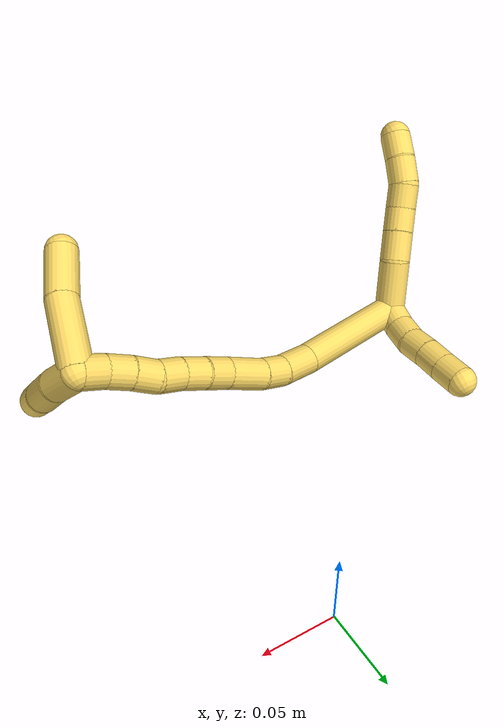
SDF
<sdf version="1.7">
 <world name="default">
  <model name="5">
   <static>0</static>
   <link name="5">
    <collision name="collision-cylinder-e_1_2_8">
     <pose>-0.005633 0.013192 0.015683 -0.699343 -0.268239 0.098327</pose>
     <geometry><cylinder><radius>0.0125</radius><length>0.042507</length></cylinder></geometry>
     <surface>
      <friction><ode><mu>1.16</mu><mu2>1.16</mu2><slip1>0</slip1><slip2>0</slip2></ode></friction>
      <contact><ode><kp>1e+06</kp><kd>1</kd><max_vel>0</max_vel><min_depth>0.001</min_depth></ode></contact>
     </surface>
    </collision>
    <visual name="visual-cylinder-e_1_2_8">
     <pose>-0.005633 0.013192 0.015683 -0.699343 -0.268239 0.098327</pose>
     <geometry><cylinder><radius>0.0125</radius><length>0.042507</length></cylinder></geometry>
     <material><ambient>1 0.858824 0.4 1</ambient></material>
    </visual>
    <collision name="collision-cylinder-e_2_8_9">
     <pose>-0.016146 0.031751 0.04115 -0.501754 -0.412263 0.107073</pose>
     <geometry><cylinder><radius>0.0125</radius><length>0.02436</length></cylinder></geometry>
     <surface>
      <friction><ode><mu>1.16</mu><mu2>1.16</mu2><slip1>0</slip1><slip2>0</slip2></ode></friction>
      <contact><ode><kp>1e+06</kp><kd>1</kd><max_vel>0</max_vel><min_depth>0.001</min_depth></ode></contact>
     </surface>
    </collision>
    <visual name="visual-cylinder-e_2_8_9">
     <pose>-0.016146 0.031751 0.04115 -0.501754 -0.412263 0.107073</pose>
     <geometry><cylinder><radius>0.0125</radius><length>0.02436</length></cylinder></geometry>
     <material><ambient>1 0.858824 0.4 1</ambient></material>
    </visual>
    <collision name="collision-cylinder-e_3_9_10">
     <pose>-0.025346 0.041151 0.059014 -0.462946 -0.446173 0.10684</pose>
     <geometry><cylinder><radius>0.0125</radius><length>0.02002</length></cylinder></geometry>
     <surface>
      <friction><ode><mu>1.16</mu><mu2>1.16</mu2><slip1>0</slip1><slip2>0</slip2></ode></friction>
      <contact><ode><kp>1e+06</kp><kd>1</kd><max_vel>0</max_vel><min_depth>0.001</min_depth></ode></contact>
     </surface>
    </collision>
    <visual name="visual-cylinder-e_3_9_10">
     <pose>-0.025346 0.041151 0.059014 -0.462946 -0.446173 0.10684</pose>
     <geometry><cylinder><radius>0.0125</radius><length>0.02002</length></cylinder></geometry>
     <material><ambient>1 0.858824 0.4 1</ambient></material>
    </visual>
    <collision name="collision-cylinder-e_4_10_11">
     <pose>-0.033416 0.050376 0.074848 -0.58998 -0.382151 0.117417</pose>
     <geometry><cylinder><radius>0.0125</radius><length>0.020115</length></cylinder></geometry>
     <surface>
      <friction><ode><mu>1.16</mu><mu2>1.16</mu2><slip1>0</slip1><slip2>0</slip2></ode></friction>
      <contact><ode><kp>1e+06</kp><kd>1</kd><max_vel>0</max_vel><min_depth>0.001</min_depth></ode></contact>
     </surface>
    </collision>
    <visual name="visual-cylinder-e_4_10_11">
     <pose>-0.033416 0.050376 0.074848 -0.58998 -0.382151 0.117417</pose>
     <geometry><cylinder><radius>0.0125</radius><length>0.020115</length></cylinder></geometry>
     <material><ambient>1 0.858824 0.4 1</ambient></material>
    </visual>
    <collision name="collision-cylinder-e_5_11_12">
     <pose>-0.039759 0.058694 0.092836 -0.296464 -0.237668 0.035654</pose>
     <geometry><cylinder><radius>0.0125</radius><length>0.022021</length></cylinder></geometry>
     <surface>
      <friction><ode><mu>1.16</mu><mu2>1.16</mu2><slip1>0</slip1><slip2>0</slip2></ode></friction>
      <contact><ode><kp>1e+06</kp><kd>1</kd><max_vel>0</max_vel><min_depth>0.001</min_depth></ode></contact>
     </surface>
    </collision>
    <visual name="visual-cylinder-e_5_11_12">
     <pose>-0.039759 0.058694 0.092836 -0.296464 -0.237668 0.035654</pose>
     <geometry><cylinder><radius>0.0125</radius><length>0.022021</length></cylinder></geometry>
     <material><ambient>1 0.858824 0.4 1</ambient></material>
    </visual>
    <collision name="collision-cylinder-e_6_12_6">
     <pose>-0.044986 0.063604 0.113065 -0.176614 -0.253898 0.0226</pose>
     <geometry><cylinder><radius>0.0125</radius><length>0.020977</length></cylinder></geometry>
     <surface>
      <friction><ode><mu>1.16</mu><mu2>1.16</mu2><slip1>0</slip1><slip2>0</slip2></ode></friction>
      <contact><ode><kp>1e+06</kp><kd>1</kd><max_vel>0</max_vel><min_depth>0.001</min_depth></ode></contact>
     </surface>
    </collision>
    <visual name="visual-cylinder-e_6_12_6">
     <pose>-0.044986 0.063604 0.113065 -0.176614 -0.253898 0.0226</pose>
     <geometry><cylinder><radius>0.0125</radius><length>0.020977</length></cylinder></geometry>
     <material><ambient>1 0.858824 0.4 1</ambient></material>
    </visual>
    <collision name="collision-cylinder-e_1_2_13">
     <pose>0.001615 0.002825 -0.009456 -2.85132 0.16221 -1.01503</pose>
     <geometry><cylinder><radius>0.0125</radius><length>0.02</length></cylinder></geometry>
     <surface>
      <friction><ode><mu>1.16</mu><mu2>1.16</mu2><slip1>0</slip1><slip2>0</slip2></ode></friction>
      <contact><ode><kp>1e+06</kp><kd>1</kd><max_vel>0</max_vel><min_depth>0.001</min_depth></ode></contact>
     </surface>
    </collision>
    <visual name="visual-cylinder-e_1_2_13">
     <pose>0.001615 0.002825 -0.009456 -2.85132 0.16221 -1.01503</pose>
     <geometry><cylinder><radius>0.0125</radius><length>0.02</length></cylinder></geometry>
     <material><ambient>1 0.858824 0.4 1</ambient></material>
    </visual>
    <collision name="collision-cylinder-e_2_13_14">
     <pose>0.004975 0.010604 -0.027421 -2.6143 0.175404 -0.629803</pose>
     <geometry><cylinder><radius>0.0125</radius><length>0.02</length></cylinder></geometry>
     <surface>
      <friction><ode><mu>1.16</mu><mu2>1.16</mu2><slip1>0</slip1><slip2>0</slip2></ode></friction>
      <contact><ode><kp>1e+06</kp><kd>1</kd><max_vel>0</max_vel><min_depth>0.001</min_depth></ode></contact>
     </surface>
    </collision>
    <visual name="visual-cylinder-e_2_13_14">
     <pose>0.004975 0.010604 -0.027421 -2.6143 0.175404 -0.629803</pose>
     <geometry><cylinder><radius>0.0125</radius><length>0.02</length></cylinder></geometry>
     <material><ambient>1 0.858824 0.4 1</ambient></material>
    </visual>
    <collision name="collision-cylinder-e_3_14_15">
     <pose>0.006555 0.021368 -0.044068 -2.52169 -0.016551 0.051667</pose>
     <geometry><cylinder><radius>0.0125</radius><length>0.02</length></cylinder></geometry>
     <surface>
      <friction><ode><mu>1.16</mu><mu2>1.16</mu2><slip1>0</slip1><slip2>0</slip2></ode></friction>
      <contact><ode><kp>1e+06</kp><kd>1</kd><max_vel>0</max_vel><min_depth>0.001</min_depth></ode></contact>
     </surface>
    </collision>
    <visual name="visual-cylinder-e_3_14_15">
     <pose>0.006555 0.021368 -0.044068 -2.52169 -0.016551 0.051667</pose>
     <geometry><cylinder><radius>0.0125</radius><length>0.02</length></cylinder></geometry>
     <material><ambient>1 0.858824 0.4 1</ambient></material>
    </visual>
    <collision name="collision-cylinder-e_4_15_16">
     <pose>0.006514 0.032495 -0.060673 -2.58069 0.012497 -0.043378</pose>
     <geometry><cylinder><radius>0.0125</radius><length>0.02</length></cylinder></geometry>
     <surface>
      <friction><ode><mu>1.16</mu><mu2>1.16</mu2><slip1>0</slip1><slip2>0</slip2></ode></friction>
      <contact><ode><kp>1e+06</kp><kd>1</kd><max_vel>0</max_vel><min_depth>0.001</min_depth></ode></contact>
     </surface>
    </collision>
    <visual name="visual-cylinder-e_4_15_16">
     <pose>0.006514 0.032495 -0.060673 -2.58069 0.012497 -0.043378</pose>
     <geometry><cylinder><radius>0.0125</radius><length>0.02</length></cylinder></geometry>
     <material><ambient>1 0.858824 0.4 1</ambient></material>
    </visual>
    <collision name="collision-cylinder-e_5_16_5">
     <pose>0.006619 0.043322 -0.077488 -2.55838 -0.001976 0.006583</pose>
     <geometry><cylinder><radius>0.0125</radius><length>0.02</length></cylinder></geometry>
     <surface>
      <friction><ode><mu>1.16</mu><mu2>1.16</mu2><slip1>0</slip1><slip2>0</slip2></ode></friction>
      <contact><ode><kp>1e+06</kp><kd>1</kd><max_vel>0</max_vel><min_depth>0.001</min_depth></ode></contact>
     </surface>
    </collision>
    <visual name="visual-cylinder-e_5_16_5">
     <pose>0.006619 0.043322 -0.077488 -2.55838 -0.001976 0.006583</pose>
     <geometry><cylinder><radius>0.0125</radius><length>0.02</length></cylinder></geometry>
     <material><ambient>1 0.858824 0.4 1</ambient></material>
    </visual>
    <collision name="collision-cylinder-e_1_2_17">
     <pose>0.04694 0.00193 -0.006715 -2.86175 1.42303 -2.81773</pose>
     <geometry><cylinder><radius>0.0125</radius><length>0.094915</length></cylinder></geometry>
     <surface>
      <friction><ode><mu>1.16</mu><mu2>1.16</mu2><slip1>0</slip1><slip2>0</slip2></ode></friction>
      <contact><ode><kp>1e+06</kp><kd>1</kd><max_vel>0</max_vel><min_depth>0.001</min_depth></ode></contact>
     </surface>
    </collision>
    <visual name="visual-cylinder-e_1_2_17">
     <pose>0.04694 0.00193 -0.006715 -2.86175 1.42303 -2.81773</pose>
     <geometry><cylinder><radius>0.0125</radius><length>0.094915</length></cylinder></geometry>
     <material><ambient>1 0.858824 0.4 1</ambient></material>
    </visual>
    <collision name="collision-cylinder-e_2_17_18">
     <pose>0.108479 0.008242 -0.014805 -1.87466 1.26598 -1.56979</pose>
     <geometry><cylinder><radius>0.0125</radius><length>0.030607</length></cylinder></geometry>
     <surface>
      <friction><ode><mu>1.16</mu><mu2>1.16</mu2><slip1>0</slip1><slip2>0</slip2></ode></friction>
      <contact><ode><kp>1e+06</kp><kd>1</kd><max_vel>0</max_vel><min_depth>0.001</min_depth></ode></contact>
     </surface>
    </collision>
    <visual name="visual-cylinder-e_2_17_18">
     <pose>0.108479 0.008242 -0.014805 -1.87466 1.26598 -1.56979</pose>
     <geometry><cylinder><radius>0.0125</radius><length>0.030607</length></cylinder></geometry>
     <material><ambient>1 0.858824 0.4 1</ambient></material>
    </visual>
    <collision name="collision-cylinder-e_3_18_19">
     <pose>0.132903 0.01606 -0.015104 -1.26747 1.21964 -0.948626</pose>
     <geometry><cylinder><radius>0.0125</radius><length>0.020931</length></cylinder></geometry>
     <surface>
      <friction><ode><mu>1.16</mu><mu2>1.16</mu2><slip1>0</slip1><slip2>0</slip2></ode></friction>
      <contact><ode><kp>1e+06</kp><kd>1</kd><max_vel>0</max_vel><min_depth>0.001</min_depth></ode></contact>
     </surface>
    </collision>
    <visual name="visual-cylinder-e_3_18_19">
     <pose>0.132903 0.01606 -0.015104 -1.26747 1.21964 -0.948626</pose>
     <geometry><cylinder><radius>0.0125</radius><length>0.020931</length></cylinder></geometry>
     <material><ambient>1 0.858824 0.4 1</ambient></material>
    </visual>
    <collision name="collision-cylinder-e_4_19_20">
     <pose>0.157616 0.0252 -0.009802 -0.933122 1.12581 -0.61542</pose>
     <geometry><cylinder><radius>0.0125</radius><length>0.032984</length></cylinder></geometry>
     <surface>
      <friction><ode><mu>1.16</mu><mu2>1.16</mu2><slip1>0</slip1><slip2>0</slip2></ode></friction>
      <contact><ode><kp>1e+06</kp><kd>1</kd><max_vel>0</max_vel><min_depth>0.001</min_depth></ode></contact>
     </surface>
    </collision>
    <visual name="visual-cylinder-e_4_19_20">
     <pose>0.157616 0.0252 -0.009802 -0.933122 1.12581 -0.61542</pose>
     <geometry><cylinder><radius>0.0125</radius><length>0.032984</length></cylinder></geometry>
     <material><ambient>1 0.858824 0.4 1</ambient></material>
    </visual>
    <collision name="collision-cylinder-e_5_20_21">
     <pose>0.181608 0.035098 -0.0036 -1.1305 1.09983 -0.741643</pose>
     <geometry><cylinder><radius>0.0125</radius><length>0.020438</length></cylinder></geometry>
     <surface>
      <friction><ode><mu>1.16</mu><mu2>1.16</mu2><slip1>0</slip1><slip2>0</slip2></ode></friction>
      <contact><ode><kp>1e+06</kp><kd>1</kd><max_vel>0</max_vel><min_depth>0.001</min_depth></ode></contact>
     </surface>
    </collision>
    <visual name="visual-cylinder-e_5_20_21">
     <pose>0.181608 0.035098 -0.0036 -1.1305 1.09983 -0.741643</pose>
     <geometry><cylinder><radius>0.0125</radius><length>0.020438</length></cylinder></geometry>
     <material><ambient>1 0.858824 0.4 1</ambient></material>
    </visual>
    <collision name="collision-cylinder-e_6_21_22">
     <pose>0.199976 0.042357 0.000709 -0.920253 1.17673 -0.638695</pose>
     <geometry><cylinder><radius>0.0125</radius><length>0.02006</length></cylinder></geometry>
     <surface>
      <friction><ode><mu>1.16</mu><mu2>1.16</mu2><slip1>0</slip1><slip2>0</slip2></ode></friction>
      <contact><ode><kp>1e+06</kp><kd>1</kd><max_vel>0</max_vel><min_depth>0.001</min_depth></ode></contact>
     </surface>
    </collision>
    <visual name="visual-cylinder-e_6_21_22">
     <pose>0.199976 0.042357 0.000709 -0.920253 1.17673 -0.638695</pose>
     <geometry><cylinder><radius>0.0125</radius><length>0.02006</length></cylinder></geometry>
     <material><ambient>1 0.858824 0.4 1</ambient></material>
    </visual>
    <collision name="collision-cylinder-e_7_22_23">
     <pose>0.218541 0.048969 0.004141 -1.27011 1.19093 -0.926084</pose>
     <geometry><cylinder><radius>0.0125</radius><length>0.020037</length></cylinder></geometry>
     <surface>
      <friction><ode><mu>1.16</mu><mu2>1.16</mu2><slip1>0</slip1><slip2>0</slip2></ode></friction>
      <contact><ode><kp>1e+06</kp><kd>1</kd><max_vel>0</max_vel><min_depth>0.001</min_depth></ode></contact>
     </surface>
    </collision>
    <visual name="visual-cylinder-e_7_22_23">
     <pose>0.218541 0.048969 0.004141 -1.27011 1.19093 -0.926084</pose>
     <geometry><cylinder><radius>0.0125</radius><length>0.020037</length></cylinder></geometry>
     <material><ambient>1 0.858824 0.4 1</ambient></material>
    </visual>
    <collision name="collision-cylinder-e_8_23_24">
     <pose>0.236485 0.055939 0.00897 -0.742487 1.04098 -0.439101</pose>
     <geometry><cylinder><radius>0.0125</radius><length>0.020026</length></cylinder></geometry>
     <surface>
      <friction><ode><mu>1.16</mu><mu2>1.16</mu2><slip1>0</slip1><slip2>0</slip2></ode></friction>
      <contact><ode><kp>1e+06</kp><kd>1</kd><max_vel>0</max_vel><min_depth>0.001</min_depth></ode></contact>
     </surface>
    </collision>
    <visual name="visual-cylinder-e_8_23_24">
     <pose>0.236485 0.055939 0.00897 -0.742487 1.04098 -0.439101</pose>
     <geometry><cylinder><radius>0.0125</radius><length>0.020026</length></cylinder></geometry>
     <material><ambient>1 0.858824 0.4 1</ambient></material>
    </visual>
    <collision name="collision-cylinder-e_9_24_25">
     <pose>0.254168 0.062313 0.015786 -0.76294 1.12941 -0.497699</pose>
     <geometry><cylinder><radius>0.0125</radius><length>0.020002</length></cylinder></geometry>
     <surface>
      <friction><ode><mu>1.16</mu><mu2>1.16</mu2><slip1>0</slip1><slip2>0</slip2></ode></friction>
      <contact><ode><kp>1e+06</kp><kd>1</kd><max_vel>0</max_vel><min_depth>0.001</min_depth></ode></contact>
     </surface>
    </collision>
    <visual name="visual-cylinder-e_9_24_25">
     <pose>0.254168 0.062313 0.015786 -0.76294 1.12941 -0.497699</pose>
     <geometry><cylinder><radius>0.0125</radius><length>0.020002</length></cylinder></geometry>
     <material><ambient>1 0.858824 0.4 1</ambient></material>
    </visual>
    <collision name="collision-cylinder-e_10_25_1">
     <pose>0.272304 0.069121 0.020442 -1.18474 1.14158 -0.815767</pose>
     <geometry><cylinder><radius>0.0125</radius><length>0.020001</length></cylinder></geometry>
     <surface>
      <friction><ode><mu>1.16</mu><mu2>1.16</mu2><slip1>0</slip1><slip2>0</slip2></ode></friction>
      <contact><ode><kp>1e+06</kp><kd>1</kd><max_vel>0</max_vel><min_depth>0.001</min_depth></ode></contact>
     </surface>
    </collision>
    <visual name="visual-cylinder-e_10_25_1">
     <pose>0.272304 0.069121 0.020442 -1.18474 1.14158 -0.815767</pose>
     <geometry><cylinder><radius>0.0125</radius><length>0.020001</length></cylinder></geometry>
     <material><ambient>1 0.858824 0.4 1</ambient></material>
    </visual>
    <collision name="collision-cylinder-e_1_1_26">
     <pose>0.287098 0.060445 0.024398 1.38239 0.420207 0.349271</pose>
     <geometry><cylinder><radius>0.0125</radius><length>0.027945</length></cylinder></geometry>
     <surface>
      <friction><ode><mu>1.16</mu><mu2>1.16</mu2><slip1>0</slip1><slip2>0</slip2></ode></friction>
      <contact><ode><kp>1e+06</kp><kd>1</kd><max_vel>0</max_vel><min_depth>0.001</min_depth></ode></contact>
     </surface>
    </collision>
    <visual name="visual-cylinder-e_1_1_26">
     <pose>0.287098 0.060445 0.024398 1.38239 0.420207 0.349271</pose>
     <geometry><cylinder><radius>0.0125</radius><length>0.027945</length></cylinder></geometry>
     <material><ambient>1 0.858824 0.4 1</ambient></material>
    </visual>
    <collision name="collision-cylinder-e_2_26_27">
     <pose>0.296233 0.03462 0.028741 1.42487 0.250283 0.216474</pose>
     <geometry><cylinder><radius>0.0125</radius><length>0.027737</length></cylinder></geometry>
     <surface>
      <friction><ode><mu>1.16</mu><mu2>1.16</mu2><slip1>0</slip1><slip2>0</slip2></ode></friction>
      <contact><ode><kp>1e+06</kp><kd>1</kd><max_vel>0</max_vel><min_depth>0.001</min_depth></ode></contact>
     </surface>
    </collision>
    <visual name="visual-cylinder-e_2_26_27">
     <pose>0.296233 0.03462 0.028741 1.42487 0.250283 0.216474</pose>
     <geometry><cylinder><radius>0.0125</radius><length>0.027737</length></cylinder></geometry>
     <material><ambient>1 0.858824 0.4 1</ambient></material>
    </visual>
    <collision name="collision-cylinder-e_3_27_4">
     <pose>0.299577 -0.000162 0.036105 1.32416 -0.004093 -0.00319</pose>
     <geometry><cylinder><radius>0.0125</radius><length>0.044319</length></cylinder></geometry>
     <surface>
      <friction><ode><mu>1.16</mu><mu2>1.16</mu2><slip1>0</slip1><slip2>0</slip2></ode></friction>
      <contact><ode><kp>1e+06</kp><kd>1</kd><max_vel>0</max_vel><min_depth>0.001</min_depth></ode></contact>
     </surface>
    </collision>
    <visual name="visual-cylinder-e_3_27_4">
     <pose>0.299577 -0.000162 0.036105 1.32416 -0.004093 -0.00319</pose>
     <geometry><cylinder><radius>0.0125</radius><length>0.044319</length></cylinder></geometry>
     <material><ambient>1 0.858824 0.4 1</ambient></material>
    </visual>
    <collision name="collision-cylinder-e_1_1_28">
     <pose>0.274837 0.068 0.050124 0.17519 -0.225864 -0.019919</pose>
     <geometry><cylinder><radius>0.0125</radius><length>0.058592</length></cylinder></geometry>
     <surface>
      <friction><ode><mu>1.16</mu><mu2>1.16</mu2><slip1>0</slip1><slip2>0</slip2></ode></friction>
      <contact><ode><kp>1e+06</kp><kd>1</kd><max_vel>0</max_vel><min_depth>0.001</min_depth></ode></contact>
     </surface>
    </collision>
    <visual name="visual-cylinder-e_1_1_28">
     <pose>0.274837 0.068 0.050124 0.17519 -0.225864 -0.019919</pose>
     <geometry><cylinder><radius>0.0125</radius><length>0.058592</length></cylinder></geometry>
     <material><ambient>1 0.858824 0.4 1</ambient></material>
    </visual>
    <collision name="collision-cylinder-e_2_28_3">
     <pose>0.260581 0.060201 0.097251 0.147345 -0.380803 -0.028448</pose>
     <geometry><cylinder><radius>0.0125</radius><length>0.041408</length></cylinder></geometry>
     <surface>
      <friction><ode><mu>1.16</mu><mu2>1.16</mu2><slip1>0</slip1><slip2>0</slip2></ode></friction>
      <contact><ode><kp>1e+06</kp><kd>1</kd><max_vel>0</max_vel><min_depth>0.001</min_depth></ode></contact>
     </surface>
    </collision>
    <visual name="visual-cylinder-e_2_28_3">
     <pose>0.260581 0.060201 0.097251 0.147345 -0.380803 -0.028448</pose>
     <geometry><cylinder><radius>0.0125</radius><length>0.041408</length></cylinder></geometry>
     <material><ambient>1 0.858824 0.4 1</ambient></material>
    </visual>
    <collision name="collision-sphere-3">
     <pose>0.252886 0.057379 0.116264 0 -0 0</pose>
     <geometry><sphere><radius>0.0125</radius></sphere></geometry>
     <surface>
      <friction><ode><mu>1.16</mu><mu2>1.16</mu2><slip1>0</slip1><slip2>0</slip2></ode></friction>
      <contact><ode><kp>1e+06</kp><kd>1</kd><max_vel>0</max_vel><min_depth>0.001</min_depth></ode></contact>
     </surface>
    </collision>
    <visual name="visual-sphere-3">
     <pose>0.252886 0.057379 0.116264 0 -0 0</pose>
     <geometry><sphere><radius>0.0125</radius></sphere></geometry>
     <material><ambient>1 0.858824 0.4 1</ambient></material>
    </visual>
    <collision name="collision-sphere-28">
     <pose>0.268276 0.063023 0.078239 0 -0 0</pose>
     <geometry><sphere><radius>0.0125</radius></sphere></geometry>
     <surface>
      <friction><ode><mu>1.16</mu><mu2>1.16</mu2><slip1>0</slip1><slip2>0</slip2></ode></friction>
      <contact><ode><kp>1e+06</kp><kd>1</kd><max_vel>0</max_vel><min_depth>0.001</min_depth></ode></contact>
     </surface>
    </collision>
    <visual name="visual-sphere-28">
     <pose>0.268276 0.063023 0.078239 0 -0 0</pose>
     <geometry><sphere><radius>0.0125</radius></sphere></geometry>
     <material><ambient>1 0.858824 0.4 1</ambient></material>
    </visual>
    <collision name="collision-sphere-4">
     <pose>0.299486 -0.02165 0.041514 0 -0 0</pose>
     <geometry><sphere><radius>0.0125</radius></sphere></geometry>
     <surface>
      <friction><ode><mu>1.16</mu><mu2>1.16</mu2><slip1>0</slip1><slip2>0</slip2></ode></friction>
      <contact><ode><kp>1e+06</kp><kd>1</kd><max_vel>0</max_vel><min_depth>0.001</min_depth></ode></contact>
     </surface>
    </collision>
    <visual name="visual-sphere-4">
     <pose>0.299486 -0.02165 0.041514 0 -0 0</pose>
     <geometry><sphere><radius>0.0125</radius></sphere></geometry>
     <material><ambient>1 0.858824 0.4 1</ambient></material>
    </visual>
    <collision name="collision-sphere-27">
     <pose>0.299668 0.021327 0.030695 0 -0 0</pose>
     <geometry><sphere><radius>0.0125</radius></sphere></geometry>
     <surface>
      <friction><ode><mu>1.16</mu><mu2>1.16</mu2><slip1>0</slip1><slip2>0</slip2></ode></friction>
      <contact><ode><kp>1e+06</kp><kd>1</kd><max_vel>0</max_vel><min_depth>0.001</min_depth></ode></contact>
     </surface>
    </collision>
    <visual name="visual-sphere-27">
     <pose>0.299668 0.021327 0.030695 0 -0 0</pose>
     <geometry><sphere><radius>0.0125</radius></sphere></geometry>
     <material><ambient>1 0.858824 0.4 1</ambient></material>
    </visual>
    <collision name="collision-sphere-26">
     <pose>0.292798 0.047914 0.026787 0 -0 0</pose>
     <geometry><sphere><radius>0.0125</radius></sphere></geometry>
     <surface>
      <friction><ode><mu>1.16</mu><mu2>1.16</mu2><slip1>0</slip1><slip2>0</slip2></ode></friction>
      <contact><ode><kp>1e+06</kp><kd>1</kd><max_vel>0</max_vel><min_depth>0.001</min_depth></ode></contact>
     </surface>
    </collision>
    <visual name="visual-sphere-26">
     <pose>0.292798 0.047914 0.026787 0 -0 0</pose>
     <geometry><sphere><radius>0.0125</radius></sphere></geometry>
     <material><ambient>1 0.858824 0.4 1</ambient></material>
    </visual>
    <collision name="collision-sphere-1">
     <pose>0.281398 0.072976 0.022009 0 -0 0</pose>
     <geometry><sphere><radius>0.0125</radius></sphere></geometry>
     <surface>
      <friction><ode><mu>1.16</mu><mu2>1.16</mu2><slip1>0</slip1><slip2>0</slip2></ode></friction>
      <contact><ode><kp>1e+06</kp><kd>1</kd><max_vel>0</max_vel><min_depth>0.001</min_depth></ode></contact>
     </surface>
    </collision>
    <visual name="visual-sphere-1">
     <pose>0.281398 0.072976 0.022009 0 -0 0</pose>
     <geometry><sphere><radius>0.0125</radius></sphere></geometry>
     <material><ambient>1 0.858824 0.4 1</ambient></material>
    </visual>
    <collision name="collision-sphere-25">
     <pose>0.263211 0.065265 0.018874 0 -0 0</pose>
     <geometry><sphere><radius>0.0125</radius></sphere></geometry>
     <surface>
      <friction><ode><mu>1.16</mu><mu2>1.16</mu2><slip1>0</slip1><slip2>0</slip2></ode></friction>
      <contact><ode><kp>1e+06</kp><kd>1</kd><max_vel>0</max_vel><min_depth>0.001</min_depth></ode></contact>
     </surface>
    </collision>
    <visual name="visual-sphere-25">
     <pose>0.263211 0.065265 0.018874 0 -0 0</pose>
     <geometry><sphere><radius>0.0125</radius></sphere></geometry>
     <material><ambient>1 0.858824 0.4 1</ambient></material>
    </visual>
    <collision name="collision-sphere-24">
     <pose>0.245126 0.05936 0.012698 0 -0 0</pose>
     <geometry><sphere><radius>0.0125</radius></sphere></geometry>
     <surface>
      <friction><ode><mu>1.16</mu><mu2>1.16</mu2><slip1>0</slip1><slip2>0</slip2></ode></friction>
      <contact><ode><kp>1e+06</kp><kd>1</kd><max_vel>0</max_vel><min_depth>0.001</min_depth></ode></contact>
     </surface>
    </collision>
    <visual name="visual-sphere-24">
     <pose>0.245126 0.05936 0.012698 0 -0 0</pose>
     <geometry><sphere><radius>0.0125</radius></sphere></geometry>
     <material><ambient>1 0.858824 0.4 1</ambient></material>
    </visual>
    <collision name="collision-sphere-23">
     <pose>0.227845 0.052517 0.005241 0 -0 0</pose>
     <geometry><sphere><radius>0.0125</radius></sphere></geometry>
     <surface>
      <friction><ode><mu>1.16</mu><mu2>1.16</mu2><slip1>0</slip1><slip2>0</slip2></ode></friction>
      <contact><ode><kp>1e+06</kp><kd>1</kd><max_vel>0</max_vel><min_depth>0.001</min_depth></ode></contact>
     </surface>
    </collision>
    <visual name="visual-sphere-23">
     <pose>0.227845 0.052517 0.005241 0 -0 0</pose>
     <geometry><sphere><radius>0.0125</radius></sphere></geometry>
     <material><ambient>1 0.858824 0.4 1</ambient></material>
    </visual>
    <collision name="collision-sphere-22">
     <pose>0.209237 0.045421 0.003041 0 -0 0</pose>
     <geometry><sphere><radius>0.0125</radius></sphere></geometry>
     <surface>
      <friction><ode><mu>1.16</mu><mu2>1.16</mu2><slip1>0</slip1><slip2>0</slip2></ode></friction>
      <contact><ode><kp>1e+06</kp><kd>1</kd><max_vel>0</max_vel><min_depth>0.001</min_depth></ode></contact>
     </surface>
    </collision>
    <visual name="visual-sphere-22">
     <pose>0.209237 0.045421 0.003041 0 -0 0</pose>
     <geometry><sphere><radius>0.0125</radius></sphere></geometry>
     <material><ambient>1 0.858824 0.4 1</ambient></material>
    </visual>
    <collision name="collision-sphere-21">
     <pose>0.190714 0.039292 -0.001624 0 -0 0</pose>
     <geometry><sphere><radius>0.0125</radius></sphere></geometry>
     <surface>
      <friction><ode><mu>1.16</mu><mu2>1.16</mu2><slip1>0</slip1><slip2>0</slip2></ode></friction>
      <contact><ode><kp>1e+06</kp><kd>1</kd><max_vel>0</max_vel><min_depth>0.001</min_depth></ode></contact>
     </surface>
    </collision>
    <visual name="visual-sphere-21">
     <pose>0.190714 0.039292 -0.001624 0 -0 0</pose>
     <geometry><sphere><radius>0.0125</radius></sphere></geometry>
     <material><ambient>1 0.858824 0.4 1</ambient></material>
    </visual>
    <collision name="collision-sphere-12">
     <pose>-0.042351 0.06182 0.10307 0 -0 0</pose>
     <geometry><sphere><radius>0.0125</radius></sphere></geometry>
     <surface>
      <friction><ode><mu>1.16</mu><mu2>1.16</mu2><slip1>0</slip1><slip2>0</slip2></ode></friction>
      <contact><ode><kp>1e+06</kp><kd>1</kd><max_vel>0</max_vel><min_depth>0.001</min_depth></ode></contact>
     </surface>
    </collision>
    <visual name="visual-sphere-12">
     <pose>-0.042351 0.06182 0.10307 0 -0 0</pose>
     <geometry><sphere><radius>0.0125</radius></sphere></geometry>
     <material><ambient>1 0.858824 0.4 1</ambient></material>
    </visual>
    <collision name="collision-sphere-11">
     <pose>-0.037167 0.055568 0.082602 0 -0 0</pose>
     <geometry><sphere><radius>0.0125</radius></sphere></geometry>
     <surface>
      <friction><ode><mu>1.16</mu><mu2>1.16</mu2><slip1>0</slip1><slip2>0</slip2></ode></friction>
      <contact><ode><kp>1e+06</kp><kd>1</kd><max_vel>0</max_vel><min_depth>0.001</min_depth></ode></contact>
     </surface>
    </collision>
    <visual name="visual-sphere-11">
     <pose>-0.037167 0.055568 0.082602 0 -0 0</pose>
     <geometry><sphere><radius>0.0125</radius></sphere></geometry>
     <material><ambient>1 0.858824 0.4 1</ambient></material>
    </visual>
    <collision name="collision-sphere-10">
     <pose>-0.029666 0.045184 0.067093 0 -0 0</pose>
     <geometry><sphere><radius>0.0125</radius></sphere></geometry>
     <surface>
      <friction><ode><mu>1.16</mu><mu2>1.16</mu2><slip1>0</slip1><slip2>0</slip2></ode></friction>
      <contact><ode><kp>1e+06</kp><kd>1</kd><max_vel>0</max_vel><min_depth>0.001</min_depth></ode></contact>
     </surface>
    </collision>
    <visual name="visual-sphere-10">
     <pose>-0.029666 0.045184 0.067093 0 -0 0</pose>
     <geometry><sphere><radius>0.0125</radius></sphere></geometry>
     <material><ambient>1 0.858824 0.4 1</ambient></material>
    </visual>
    <collision name="collision-sphere-9">
     <pose>-0.021027 0.037119 0.050934 0 -0 0</pose>
     <geometry><sphere><radius>0.0125</radius></sphere></geometry>
     <surface>
      <friction><ode><mu>1.16</mu><mu2>1.16</mu2><slip1>0</slip1><slip2>0</slip2></ode></friction>
      <contact><ode><kp>1e+06</kp><kd>1</kd><max_vel>0</max_vel><min_depth>0.001</min_depth></ode></contact>
     </surface>
    </collision>
    <visual name="visual-sphere-9">
     <pose>-0.021027 0.037119 0.050934 0 -0 0</pose>
     <geometry><sphere><radius>0.0125</radius></sphere></geometry>
     <material><ambient>1 0.858824 0.4 1</ambient></material>
    </visual>
    <collision name="collision-sphere-2">
     <geometry><sphere><radius>0.0125</radius></sphere></geometry>
     <surface>
      <friction><ode><mu>1.16</mu><mu2>1.16</mu2><slip1>0</slip1><slip2>0</slip2></ode></friction>
      <contact><ode><kp>1e+06</kp><kd>1</kd><max_vel>0</max_vel><min_depth>0.001</min_depth></ode></contact>
     </surface>
    </collision>
    <visual name="visual-sphere-2">
     <geometry><sphere><radius>0.0125</radius></sphere></geometry>
     <material><ambient>1 0.858824 0.4 1</ambient></material>
    </visual>
    <collision name="collision-sphere-19">
     <pose>0.14273 0.019496 -0.014028 0 -0 0</pose>
     <geometry><sphere><radius>0.0125</radius></sphere></geometry>
     <surface>
      <friction><ode><mu>1.16</mu><mu2>1.16</mu2><slip1>0</slip1><slip2>0</slip2></ode></friction>
      <contact><ode><kp>1e+06</kp><kd>1</kd><max_vel>0</max_vel><min_depth>0.001</min_depth></ode></contact>
     </surface>
    </collision>
    <visual name="visual-sphere-19">
     <pose>0.14273 0.019496 -0.014028 0 -0 0</pose>
     <geometry><sphere><radius>0.0125</radius></sphere></geometry>
     <material><ambient>1 0.858824 0.4 1</ambient></material>
    </visual>
    <collision name="collision-sphere-8">
     <pose>-0.011266 0.026384 0.031366 0 -0 0</pose>
     <geometry><sphere><radius>0.0125</radius></sphere></geometry>
     <surface>
      <friction><ode><mu>1.16</mu><mu2>1.16</mu2><slip1>0</slip1><slip2>0</slip2></ode></friction>
      <contact><ode><kp>1e+06</kp><kd>1</kd><max_vel>0</max_vel><min_depth>0.001</min_depth></ode></contact>
     </surface>
    </collision>
    <visual name="visual-sphere-8">
     <pose>-0.011266 0.026384 0.031366 0 -0 0</pose>
     <geometry><sphere><radius>0.0125</radius></sphere></geometry>
     <material><ambient>1 0.858824 0.4 1</ambient></material>
    </visual>
    <collision name="collision-sphere-6">
     <pose>-0.04762 0.065388 0.123059 0 -0 0</pose>
     <geometry><sphere><radius>0.0125</radius></sphere></geometry>
     <surface>
      <friction><ode><mu>1.16</mu><mu2>1.16</mu2><slip1>0</slip1><slip2>0</slip2></ode></friction>
      <contact><ode><kp>1e+06</kp><kd>1</kd><max_vel>0</max_vel><min_depth>0.001</min_depth></ode></contact>
     </surface>
    </collision>
    <visual name="visual-sphere-6">
     <pose>-0.04762 0.065388 0.123059 0 -0 0</pose>
     <geometry><sphere><radius>0.0125</radius></sphere></geometry>
     <material><ambient>1 0.858824 0.4 1</ambient></material>
    </visual>
    <collision name="collision-sphere-13">
     <pose>0.00323 0.005649 -0.018912 0 -0 0</pose>
     <geometry><sphere><radius>0.0125</radius></sphere></geometry>
     <surface>
      <friction><ode><mu>1.16</mu><mu2>1.16</mu2><slip1>0</slip1><slip2>0</slip2></ode></friction>
      <contact><ode><kp>1e+06</kp><kd>1</kd><max_vel>0</max_vel><min_depth>0.001</min_depth></ode></contact>
     </surface>
    </collision>
    <visual name="visual-sphere-13">
     <pose>0.00323 0.005649 -0.018912 0 -0 0</pose>
     <geometry><sphere><radius>0.0125</radius></sphere></geometry>
     <material><ambient>1 0.858824 0.4 1</ambient></material>
    </visual>
    <collision name="collision-sphere-14">
     <pose>0.00672 0.015559 -0.03593 0 -0 0</pose>
     <geometry><sphere><radius>0.0125</radius></sphere></geometry>
     <surface>
      <friction><ode><mu>1.16</mu><mu2>1.16</mu2><slip1>0</slip1><slip2>0</slip2></ode></friction>
      <contact><ode><kp>1e+06</kp><kd>1</kd><max_vel>0</max_vel><min_depth>0.001</min_depth></ode></contact>
     </surface>
    </collision>
    <visual name="visual-sphere-14">
     <pose>0.00672 0.015559 -0.03593 0 -0 0</pose>
     <geometry><sphere><radius>0.0125</radius></sphere></geometry>
     <material><ambient>1 0.858824 0.4 1</ambient></material>
    </visual>
    <collision name="collision-sphere-15">
     <pose>0.006389 0.027176 -0.052206 0 -0 0</pose>
     <geometry><sphere><radius>0.0125</radius></sphere></geometry>
     <surface>
      <friction><ode><mu>1.16</mu><mu2>1.16</mu2><slip1>0</slip1><slip2>0</slip2></ode></friction>
      <contact><ode><kp>1e+06</kp><kd>1</kd><max_vel>0</max_vel><min_depth>0.001</min_depth></ode></contact>
     </surface>
    </collision>
    <visual name="visual-sphere-15">
     <pose>0.006389 0.027176 -0.052206 0 -0 0</pose>
     <geometry><sphere><radius>0.0125</radius></sphere></geometry>
     <material><ambient>1 0.858824 0.4 1</ambient></material>
    </visual>
    <collision name="collision-sphere-16">
     <pose>0.006639 0.037815 -0.069141 0 -0 0</pose>
     <geometry><sphere><radius>0.0125</radius></sphere></geometry>
     <surface>
      <friction><ode><mu>1.16</mu><mu2>1.16</mu2><slip1>0</slip1><slip2>0</slip2></ode></friction>
      <contact><ode><kp>1e+06</kp><kd>1</kd><max_vel>0</max_vel><min_depth>0.001</min_depth></ode></contact>
     </surface>
    </collision>
    <visual name="visual-sphere-16">
     <pose>0.006639 0.037815 -0.069141 0 -0 0</pose>
     <geometry><sphere><radius>0.0125</radius></sphere></geometry>
     <material><ambient>1 0.858824 0.4 1</ambient></material>
    </visual>
    <collision name="collision-sphere-5">
     <pose>0.006599 0.048829 -0.085834 0 -0 0</pose>
     <geometry><sphere><radius>0.0125</radius></sphere></geometry>
     <surface>
      <friction><ode><mu>1.16</mu><mu2>1.16</mu2><slip1>0</slip1><slip2>0</slip2></ode></friction>
      <contact><ode><kp>1e+06</kp><kd>1</kd><max_vel>0</max_vel><min_depth>0.001</min_depth></ode></contact>
     </surface>
    </collision>
    <visual name="visual-sphere-5">
     <pose>0.006599 0.048829 -0.085834 0 -0 0</pose>
     <geometry><sphere><radius>0.0125</radius></sphere></geometry>
     <material><ambient>1 0.858824 0.4 1</ambient></material>
    </visual>
    <collision name="collision-sphere-17">
     <pose>0.093881 0.00386 -0.01343 0 -0 0</pose>
     <geometry><sphere><radius>0.0125</radius></sphere></geometry>
     <surface>
      <friction><ode><mu>1.16</mu><mu2>1.16</mu2><slip1>0</slip1><slip2>0</slip2></ode></friction>
      <contact><ode><kp>1e+06</kp><kd>1</kd><max_vel>0</max_vel><min_depth>0.001</min_depth></ode></contact>
     </surface>
    </collision>
    <visual name="visual-sphere-17">
     <pose>0.093881 0.00386 -0.01343 0 -0 0</pose>
     <geometry><sphere><radius>0.0125</radius></sphere></geometry>
     <material><ambient>1 0.858824 0.4 1</ambient></material>
    </visual>
    <collision name="collision-sphere-18">
     <pose>0.123076 0.012625 -0.016179 0 -0 0</pose>
     <geometry><sphere><radius>0.0125</radius></sphere></geometry>
     <surface>
      <friction><ode><mu>1.16</mu><mu2>1.16</mu2><slip1>0</slip1><slip2>0</slip2></ode></friction>
      <contact><ode><kp>1e+06</kp><kd>1</kd><max_vel>0</max_vel><min_depth>0.001</min_depth></ode></contact>
     </surface>
    </collision>
    <visual name="visual-sphere-18">
     <pose>0.123076 0.012625 -0.016179 0 -0 0</pose>
     <geometry><sphere><radius>0.0125</radius></sphere></geometry>
     <material><ambient>1 0.858824 0.4 1</ambient></material>
    </visual>
    <collision name="collision-sphere-20">
     <pose>0.172502 0.030903 -0.005576 0 -0 0</pose>
     <geometry><sphere><radius>0.0125</radius></sphere></geometry>
     <surface>
      <friction><ode><mu>1.16</mu><mu2>1.16</mu2><slip1>0</slip1><slip2>0</slip2></ode></friction>
      <contact><ode><kp>1e+06</kp><kd>1</kd><max_vel>0</max_vel><min_depth>0.001</min_depth></ode></contact>
     </surface>
    </collision>
    <visual name="visual-sphere-20">
     <pose>0.172502 0.030903 -0.005576 0 -0 0</pose>
     <geometry><sphere><radius>0.0125</radius></sphere></geometry>
     <material><ambient>1 0.858824 0.4 1</ambient></material>
    </visual>
    <inertial>
     <pose>0.12857 0.033373 0.018174 0 -0 0</pose>
     <mass>0.75</mass>
     <inertia><ixx>6.6e-05</ixx><ixy>0</ixy><ixz>0</ixz><iyy>0.000128</iyy><iyz>0</iyz><izz>-7e-05</izz></inertia>
    </inertial>
   </link>
   <pose>-0.21067 -0.215015 0.020873 0.976715 0.046102 -0.009777</pose>
  </model>
 </world>
</sdf>
